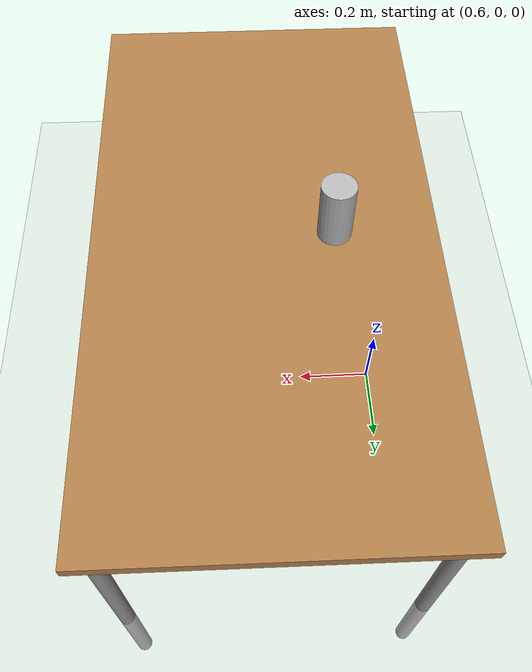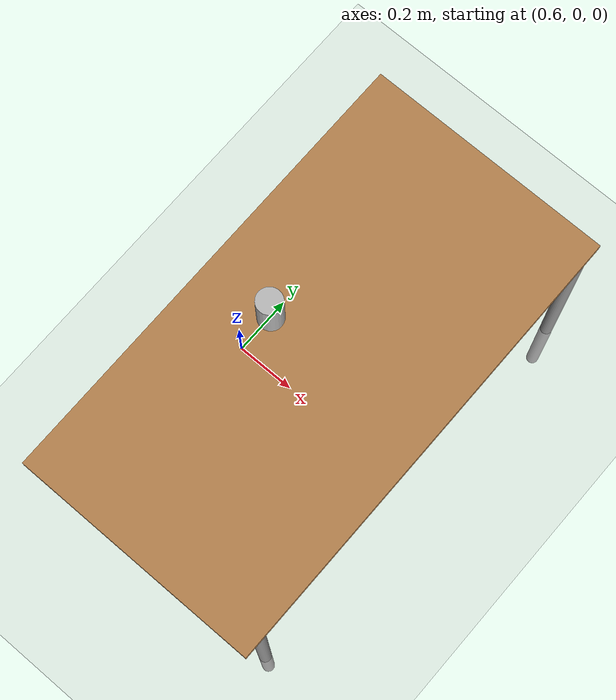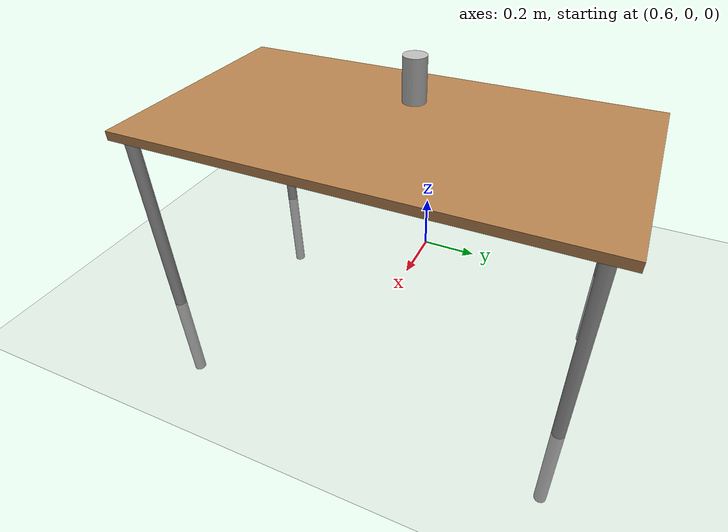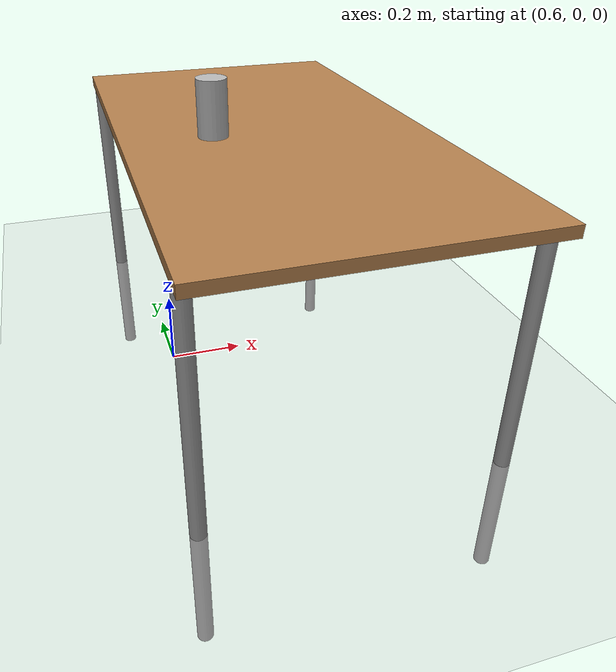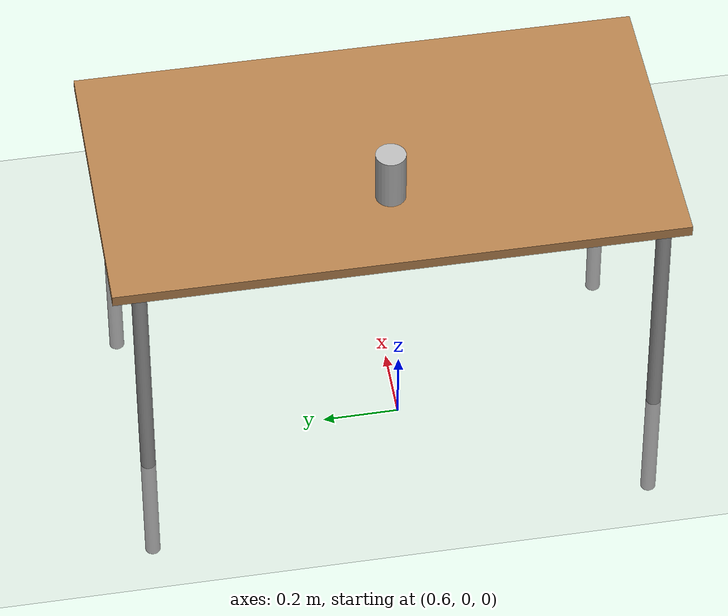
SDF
<sdf version="1.7">
 <world name="default">
  <physics type="ode">
   <ode>
    <solver>
     <type>quick</type>
     <iters>50</iters>
     <sor>1.4</sor>
     <use_dynamic_moi_rescaling>0</use_dynamic_moi_rescaling>
    </solver>
    <constraints>
     <cfm>0</cfm>
     <erp>0.2</erp>
     <contact_max_correcting_vel>100</contact_max_correcting_vel>
     <contact_surface_layer>0</contact_surface_layer>
    </constraints>
   </ode>
   <real_time_update_rate>1000</real_time_update_rate>
   <max_step_size>0.001</max_step_size>
   <real_time_factor>1</real_time_factor>
  </physics>
  <light name="sun" type="directional">
   <pose>0 0 10 0 -0 0</pose>
   <diffuse>0.8 0.8 0.8 1</diffuse>
   <specular>0.2 0.2 0.2 1</specular>
   <attenuation>
    <range>1000</range>
    <constant>0.9</constant>
    <linear>0.01</linear>
    <quadratic>0.001</quadratic>
   </attenuation>
   <direction>-0.5 0.1 -0.9</direction>
   <spot><inner_angle>0</inner_angle><outer_angle>0</outer_angle><falloff>0</falloff></spot>
  </light>
  <model name="ground_plane">
   <static>1</static>
   <link name="link">
    <collision name="collision">
     <geometry><plane><normal>0 0 1</normal><size>100 100</size></plane></geometry>
     <surface><friction><ode><mu>100</mu><mu2>50</mu2></ode></friction></surface>
    </collision>
    <visual name="visual">
     <cast_shadows>0</cast_shadows>
     <geometry><plane><normal>0 0 1</normal><size>100 100</size></plane></geometry>
     <material>
      <script><uri>file://media/materials/scripts/gazebo.material</uri><name>Gazebo/Grey</name></script>
     </material>
    </visual>
   </link>
  </model>
  <gravity>0 0 -9.81</gravity>
  <magnetic_field>6e-06 2.3e-05 -4.2e-05</magnetic_field>
  <atmosphere type="adiabatic"/>
  <scene><ambient>0.4 0.4 0.4 1</ambient><background>0.7 0.7 0.7 1</background><shadows>1</shadows></scene>
  <audio><device>default</device></audio>
  <spherical_coordinates>
   <surface_model>EARTH_WGS84</surface_model>
   <latitude_deg>0</latitude_deg>
   <longitude_deg>0</longitude_deg>
   <elevation>0</elevation>
   <heading_deg>0</heading_deg>
  </spherical_coordinates>
  <model name="table">
   <static>1</static>
   <link name="link">
    <collision name="surface">
     <pose>0 0 1 0 -0 0</pose>
     <geometry><box><size>1.5 0.8 0.03</size></box></geometry>
     <surface><friction><ode><mu>0.6</mu><mu2>0.6</mu2></ode></friction></surface>
    </collision>
    <visual name="visual1">
     <pose>0 0 1 0 -0 0</pose>
     <geometry><box><size>1.5 0.8 0.03</size></box></geometry>
     <material>
      <script><uri>file://media/materials/scripts/gazebo.material</uri><name>Gazebo/Wood</name></script>
     </material>
    </visual>
    <collision name="front_left_leg">
     <pose>0.68 0.38 0.5 0 -0 0</pose>
     <geometry><cylinder><radius>0.02</radius><length>1</length></cylinder></geometry>
    </collision>
    <visual name="front_left_leg">
     <pose>0.68 0.38 0.5 0 -0 0</pose>
     <geometry><cylinder><radius>0.02</radius><length>1</length></cylinder></geometry>
     <material>
      <script><uri>file://media/materials/scripts/gazebo.material</uri><name>Gazebo/Grey</name></script>
     </material>
    </visual>
    <collision name="front_right_leg">
     <pose>0.68 -0.38 0.5 0 -0 0</pose>
     <geometry><cylinder><radius>0.02</radius><length>1</length></cylinder></geometry>
    </collision>
    <visual name="front_right_leg">
     <pose>0.68 -0.38 0.5 0 -0 0</pose>
     <geometry><cylinder><radius>0.02</radius><length>1</length></cylinder></geometry>
     <material>
      <script><uri>file://media/materials/scripts/gazebo.material</uri><name>Gazebo/Grey</name></script>
     </material>
    </visual>
    <collision name="back_right_leg">
     <pose>-0.68 -0.38 0.5 0 -0 0</pose>
     <geometry><cylinder><radius>0.02</radius><length>1</length></cylinder></geometry>
    </collision>
    <visual name="back_right_leg">
     <pose>-0.68 -0.38 0.5 0 -0 0</pose>
     <geometry><cylinder><radius>0.02</radius><length>1</length></cylinder></geometry>
     <material>
      <script><uri>file://media/materials/scripts/gazebo.material</uri><name>Gazebo/Grey</name></script>
     </material>
    </visual>
    <collision name="back_left_leg">
     <pose>-0.68 0.38 0.5 0 -0 0</pose>
     <geometry><cylinder><radius>0.02</radius><length>1</length></cylinder></geometry>
    </collision>
    <visual name="back_left_leg">
     <pose>-0.68 0.38 0.5 0 -0 0</pose>
     <geometry><cylinder><radius>0.02</radius><length>1</length></cylinder></geometry>
     <material>
      <script><uri>file://media/materials/scripts/gazebo.material</uri><name>Gazebo/Grey</name></script>
     </material>
    </visual>
   </link>
   <pose>0.9087 0.000569 -0.350034 0 0 -1.57117</pose>
  </model>
  <model name="cocacola">
   <static>0</static>
   <link name="link">
    <inertial>
     <mass>0.25</mass>
     <inertia><ixx>0</ixx><ixy>0</ixy><ixz>0</ixz><iyy>0</iyy><iyz>0</iyz><izz>0</izz></inertia>
    </inertial>
    <collision name="collision">
     <pose>0 0 0.075 -3.14159 -0 0</pose>
     <geometry><cylinder><radius>0.04</radius><length>0.15</length></cylinder></geometry>
    </collision>
    <visual name="visual">
     <pose>0 0 0.075 -3.14159 -0 0</pose>
     <geometry><cylinder><radius>0.04</radius><length>0.15</length></cylinder></geometry>
     <material>
      <script>
       <uri>model://cocacola/material/scripts</uri>
       <uri>model://cocacola/material/textures</uri>
       <name>Custom/cocacola</name>
      </script>
     </material>
    </visual>
    <velocity_decay><linear>0</linear><angular>0</angular></velocity_decay>
   </link>
   <pose>0.74854 -0.004406 0.664976 0.000157 0.000197 2e-06</pose>
  </model>
  <plugin name="gazebo_ros_state" filename="libgazebo_ros_state.so"><update_rate>30</update_rate></plugin>
  <plugin name="gazebo_link_attacher" filename="libgazebo_link_attacher.so"/>
 </world>
</sdf>
